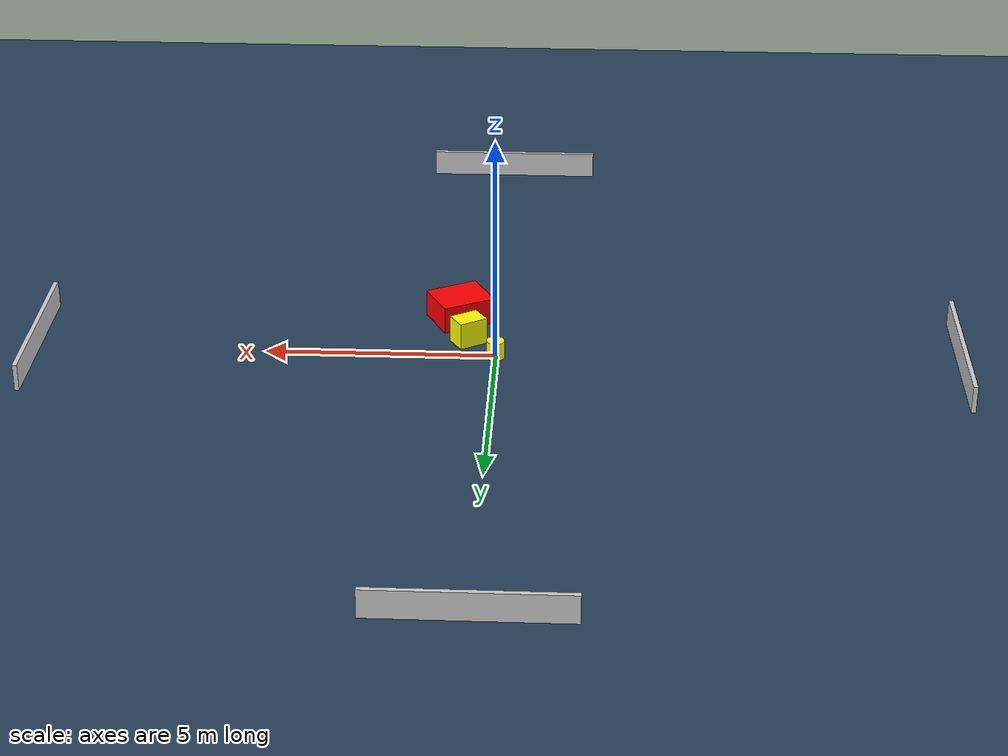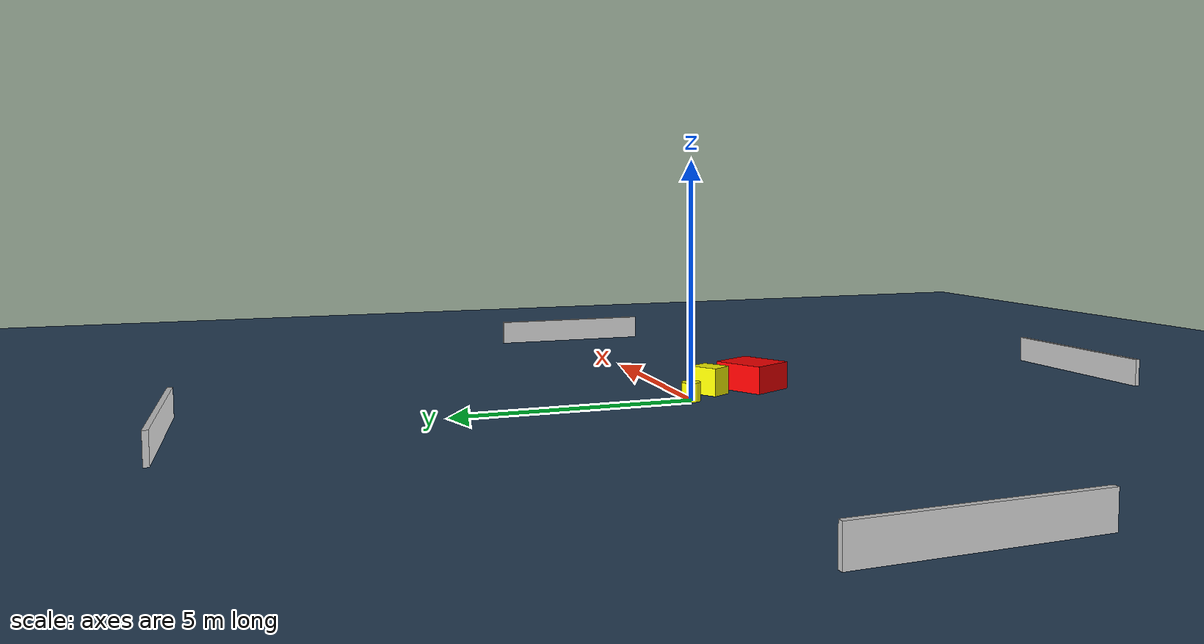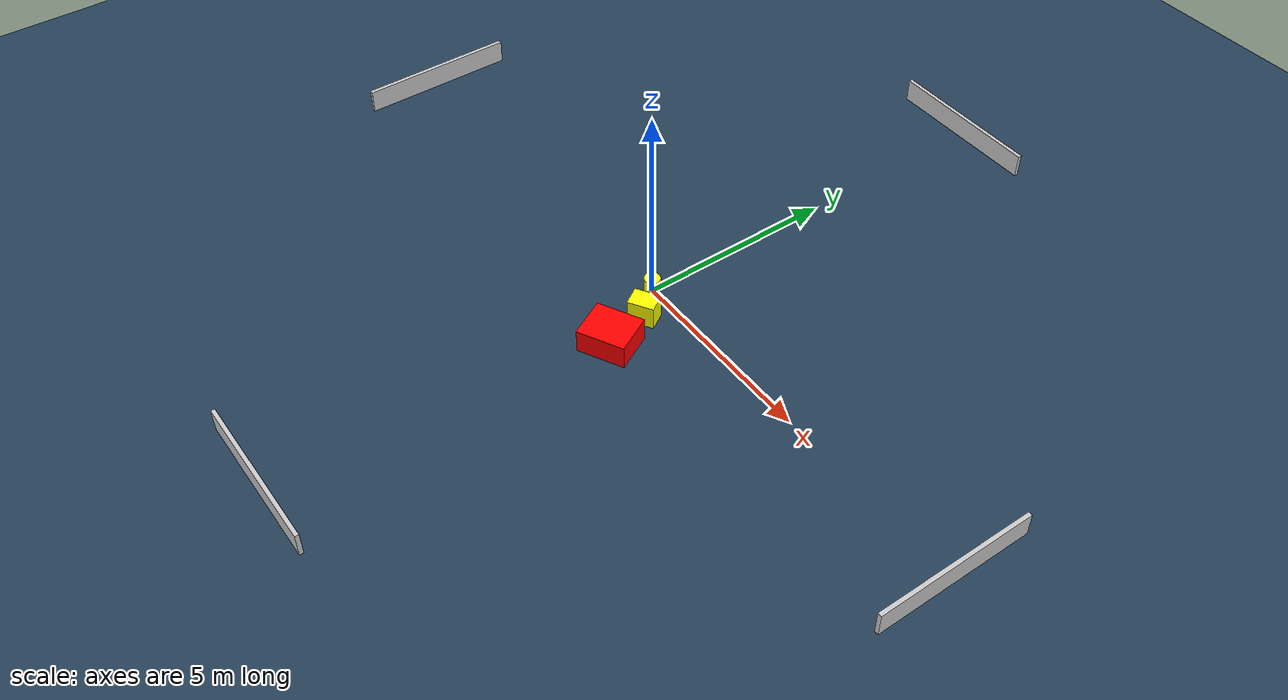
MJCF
<?xml version="1.0" ?>
<mujoco model="generated_environment">
  <option timestep="0.01" integrator="RK4" cone="elliptic"/>
  <default>
    <geom density="1"/>
  </default>
  <asset>
    <texture builtin="gradient" height="3072" name="skybox" rgb1="0.3 0.5 0.7" rgb2="0 0 0" type="skybox" width="512"/>
    <texture builtin="checker" height="300" name="groundplane" rgb1="0.2 0.3 0.4" rgb2="0.1 0.2 0.3" type="2d" width="300"/>
    <material name="groundplane" reflectance="0.2" texrepeat="5 5" texture="groundplane"/>
  </asset>
  <worldbody>
    <light dir="0 0 -1" directional="true" pos="0 0 1.5"/>
    <geom condim="3" friction="0.5 0.005 0.001" material="groundplane" name="floor" pos="0 0 0" size="0 0 0.05" type="plane"/>
    <body name="walls">
      <geom name="wall_1" condim="4" pos="-10.0 0.0 0.3" rgba="0.800000011920929 0.800000011920929 0.800000011920929 1.0" size="0.05 2.0 0.3" type="box"/>
      <geom name="wall_2" condim="4" pos="10.0 0.0 0.3" rgba="0.800000011920929 0.800000011920929 0.800000011920929 1.0" size="0.05 2.0 0.3" type="box"/>
      <geom name="wall_3" condim="4" pos="0.0 -10.0 0.3" rgba="0.800000011920929 0.800000011920929 0.800000011920929 1.0" size="2.0 0.05 0.3" type="box"/>
      <geom name="wall_4" condim="4" pos="0.0 10.0 0.3" rgba="0.800000011920929 0.800000011920929 0.800000011920929 1.0" size="2.0 0.05 0.3" type="box"/>
    </body>
    <body name="robot">
      <joint name="joint_x" type="slide" pos="0 0 0" axis="1 0 0"/>
      <joint name="joint_y" type="slide" pos="0 0 0" axis="0 1 0"/>
      <geom name="robot" type="cylinder" pos="0.0 0.0 0.2" size="0.2 0.2 0.0" mass="5.0" friction="1.0 0.005 0.0001" condim="4" rgba="1.0 1.0 0.0 1.0"/>
    </body>
    <body name="obstacle_1_movable">
      <geom name="obstacle_1_movable" condim="4" pos="0.6230236290957145 -0.6778732558702059 0.3" euler="0 0 32.05472952120569" friction="0.0 0.005 0.001" rgba="1.0 1.0 0.0 1.0" size="0.32634545673386317 0.2456248743767012 0.3" type="box" mass="0.1"/>
      <joint type="free"/>
    </body>
    <body name="obstacle_2_static">
      <geom name="obstacle_2_static" condim="4" pos="0.8687180695279223 -1.7826033147055522 0.3" euler="0 0 207.61887219427524" friction="0.0 0.005 0.001" rgba="1.0 0.0 0.0 1.0" size="0.599228536046617 0.5083869053691821 0.3" type="box"/>
    </body>
  </worldbody>
  <actuator>
    <motor name="actuator_x" joint="joint_x" gear="1" ctrlrange="-1 1"/>
    <motor name="actuator_y" joint="joint_y" gear="1" ctrlrange="-1 1"/>
  </actuator>
</mujoco>
